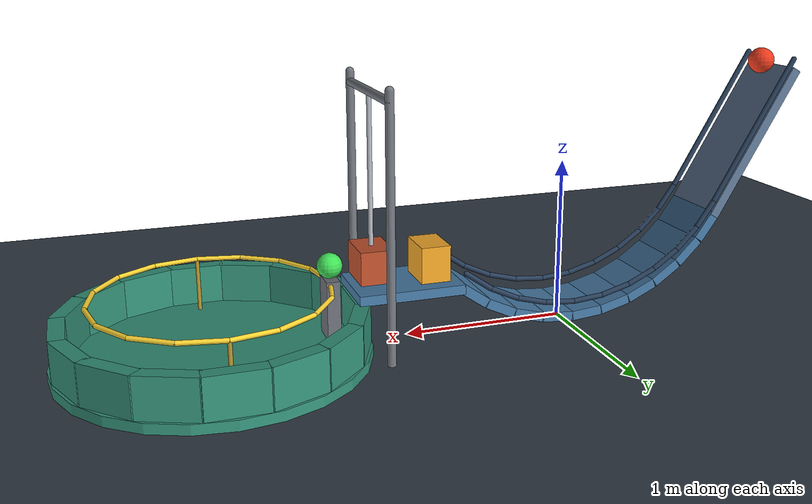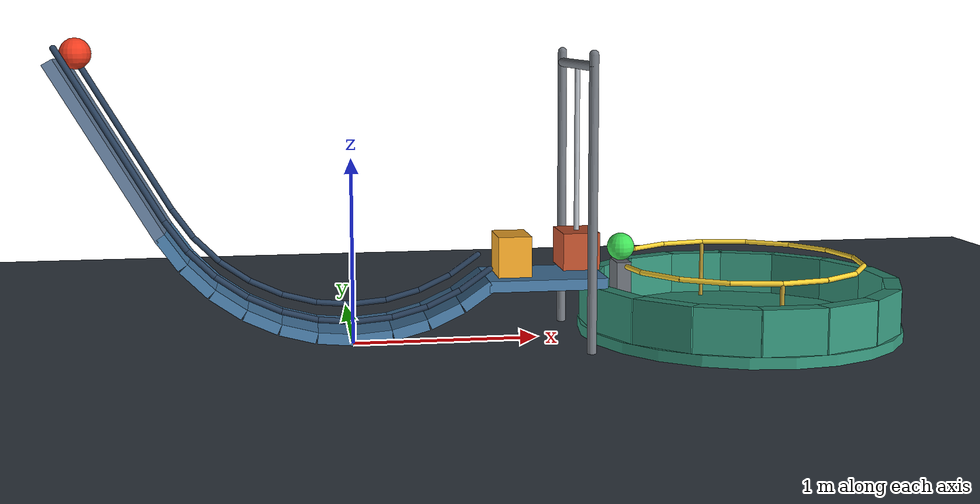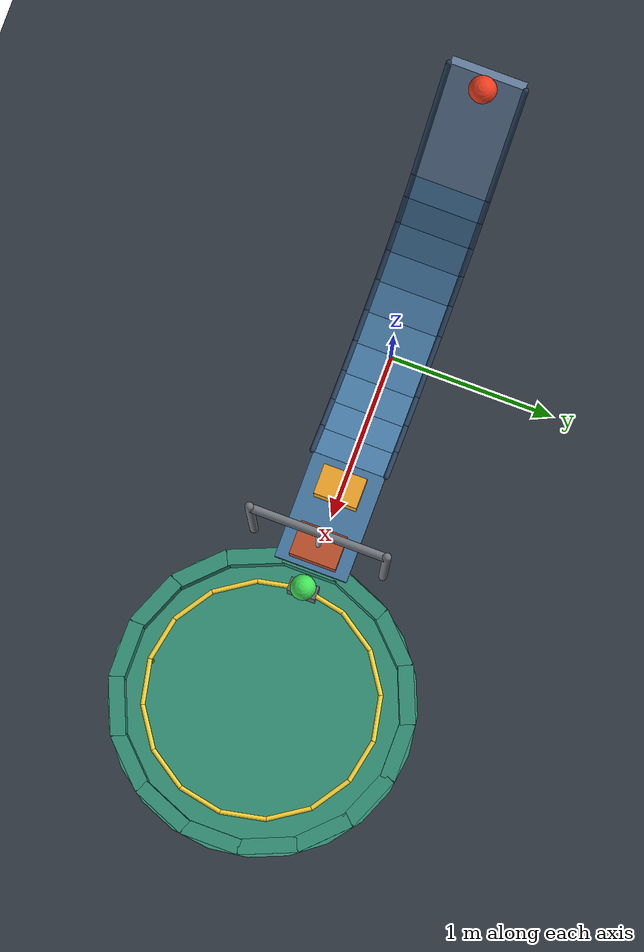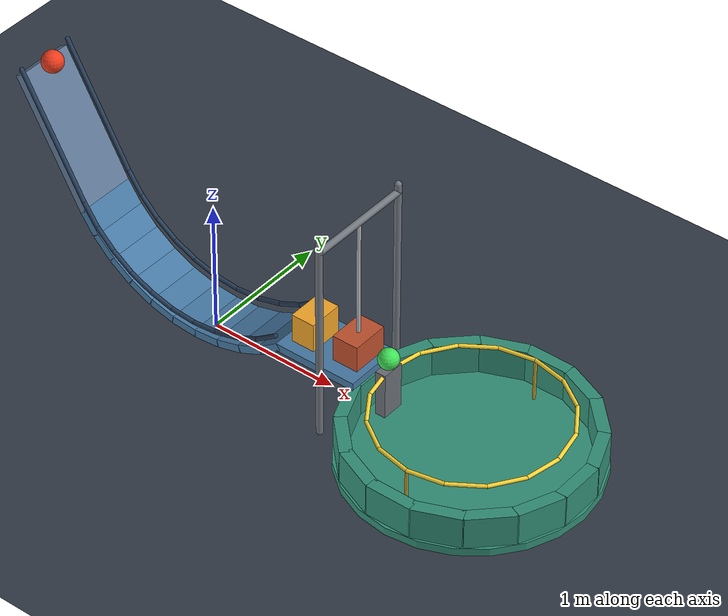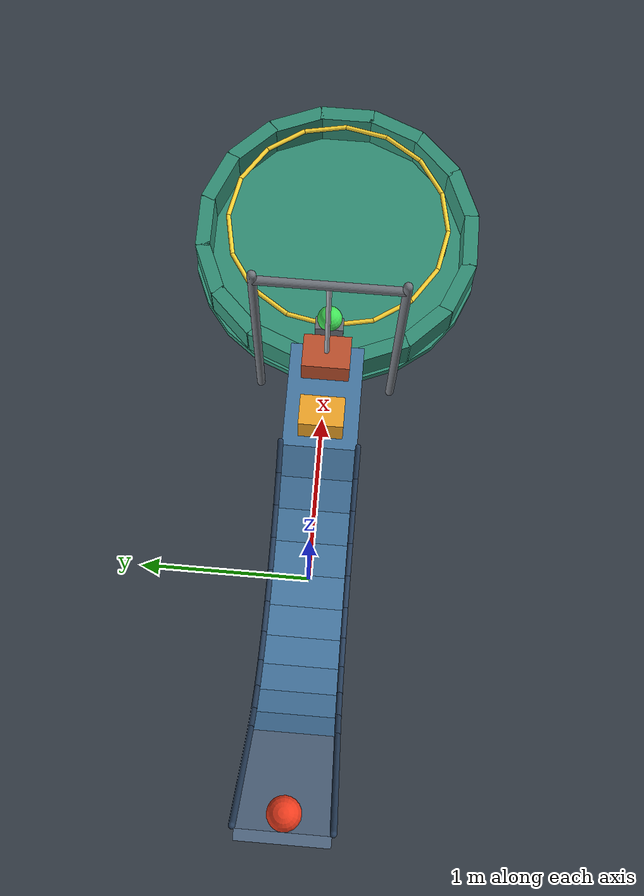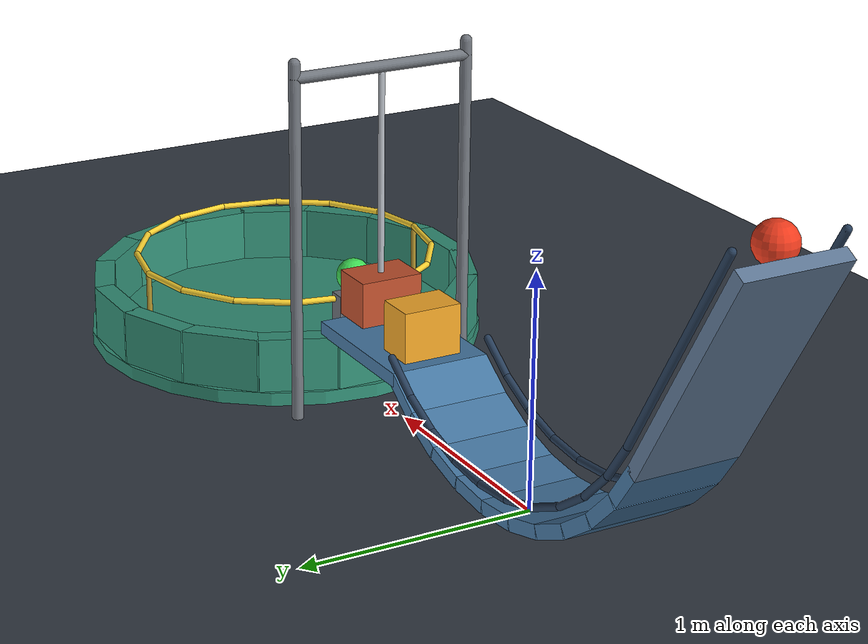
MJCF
<mujoco model="halfpipe_chain">
  <compiler angle="degree" autolimits="true"/>
  <option timestep="0.002" gravity="0 0 -9.81" integrator="implicitfast" solver="Newton" iterations="100" cone="elliptic" impratio="5"/>
  <size njmax="2000" nconmax="400"/>

  <visual>
    <headlight ambient="0.45 0.45 0.45" diffuse="0.7 0.7 0.7" specular="0.2 0.2 0.2"/>
    <map znear="0.01" zfar="30"/>
  </visual>

  <worldbody>
    <light name="main_light" pos="-1 -3 6" dir="0.2 0.3 -1" diffuse="0.8 0.8 0.8"/>
    <camera name="overview" pos="0.5 -6 3.4" xyaxes="1 0 0 0 0.4 0.916515"/>
    <geom name="floor" type="plane" pos="0 0 0" size="6 4 0.1" rgba="0.20 0.23 0.27 1" friction="0.8 0.02 0.01" condim="6" solref="0.01 1"/>

    <!-- The contact point beneath ball1 is one metre uphill from the ramp exit. -->
    <body name="ramp">
      <geom name="ramp_surface" type="box" pos="-1.228609 0 1.068013" quat="0.866025 0 0.5 0" size="0.52 0.22 0.03" rgba="0.38 0.48 0.60 1" friction="0.45 0.005 0.0002" condim="6" solref="0.008 0.8"/>
      <geom name="ramp_rail_left" type="capsule" fromto="-1.452628 -0.225 1.586025 -0.952628 -0.225 0.72" size="0.016" rgba="0.16 0.25 0.36 1" friction="0.3 0.005 0.0002" condim="6"/>
      <geom name="ramp_rail_right" type="capsule" fromto="-1.452628 0.225 1.586025 -0.952628 0.225 0.72" size="0.016" rgba="0.16 0.25 0.36 1" friction="0.3 0.005 0.0002" condim="6"/>
    </body>

    <!-- Primitive box facets approximate a circular halfpipe of radius 1.1 m. -->
    <body name="halfpipe">
      <geom name="halfpipe_surface_01" type="box" pos="-0.922213 0 0.554253" quat="0.887011 0 0.461749 0" size="0.0962 0.22 0.03" rgba="0.28 0.48 0.65 1" friction="0.45 0.005 0.0002" condim="6" solref="0.008 0.8"/>
      <geom name="halfpipe_surface_02" type="box" pos="-0.796071 0 0.403929" quat="0.923880 0 0.382683 0" size="0.0962 0.22 0.03" rgba="0.28 0.48 0.65 1" friction="0.45 0.005 0.0002" condim="6" solref="0.008 0.8"/>
      <geom name="halfpipe_surface_03" type="box" pos="-0.645747 0 0.277787" quat="0.953717 0 0.300706 0" size="0.0962 0.22 0.03" rgba="0.28 0.48 0.65 1" friction="0.45 0.005 0.0002" condim="6" solref="0.008 0.8"/>
      <geom name="halfpipe_surface_04" type="box" pos="-0.475786 0 0.179661" quat="0.976296 0 0.216440 0" size="0.0962 0.22 0.03" rgba="0.28 0.48 0.65 1" friction="0.45 0.005 0.0002" condim="6" solref="0.008 0.8"/>
      <geom name="halfpipe_surface_05" type="box" pos="-0.291384 0 0.112539" quat="0.991445 0 0.130526 0" size="0.0962 0.22 0.03" rgba="0.28 0.48 0.65 1" friction="0.45 0.005 0.0002" condim="6" solref="0.008 0.8"/>
      <geom name="halfpipe_surface_06" type="box" pos="-0.098123 0 0.078470" quat="0.999048 0 0.043619 0" size="0.0962 0.22 0.03" rgba="0.28 0.48 0.65 1" friction="0.45 0.005 0.0002" condim="6" solref="0.008 0.8"/>
      <geom name="halfpipe_surface_07" type="box" pos="0.098123 0 0.078470" quat="0.999048 0 -0.043619 0" size="0.0962 0.22 0.03" rgba="0.28 0.48 0.65 1" friction="0.45 0.005 0.0002" condim="6" solref="0.008 0.8"/>
      <geom name="halfpipe_surface_08" type="box" pos="0.291384 0 0.112539" quat="0.991445 0 -0.130526 0" size="0.0962 0.22 0.03" rgba="0.28 0.48 0.65 1" friction="0.45 0.005 0.0002" condim="6" solref="0.008 0.8"/>
      <geom name="halfpipe_surface_09" type="box" pos="0.475786 0 0.179661" quat="0.976296 0 -0.216440 0" size="0.0962 0.22 0.03" rgba="0.28 0.48 0.65 1" friction="0.45 0.005 0.0002" condim="6" solref="0.008 0.8"/>
      <geom name="halfpipe_surface_10" type="box" pos="0.645747 0 0.277787" quat="0.953717 0 -0.300706 0" size="0.0962 0.22 0.03" rgba="0.28 0.48 0.65 1" friction="0.45 0.005 0.0002" condim="6" solref="0.008 0.8"/>
      <geom name="halfpipe_exit_shelf" type="box" pos="1.028533 0 0.327351" size="0.321467 0.22 0.03" rgba="0.28 0.48 0.65 1" friction="0.08 0.003 0.0001" condim="6" solref="0.008 1"/>

      <geom name="halfpipe_left_01" type="capsule" fromto="-0.952628 -0.225 0.72 -0.842649 -0.225 0.562933" size="0.016" rgba="0.16 0.25 0.36 1"/>
      <geom name="halfpipe_left_02" type="capsule" fromto="-0.842649 -0.225 0.562933 -0.707066 -0.225 0.427351" size="0.016" rgba="0.16 0.25 0.36 1"/>
      <geom name="halfpipe_left_03" type="capsule" fromto="-0.707066 -0.225 0.427351 -0.55 -0.225 0.317372" size="0.016" rgba="0.16 0.25 0.36 1"/>
      <geom name="halfpipe_left_04" type="capsule" fromto="-0.55 -0.225 0.317372 -0.376222 -0.225 0.236338" size="0.016" rgba="0.16 0.25 0.36 1"/>
      <geom name="halfpipe_left_05" type="capsule" fromto="-0.376222 -0.225 0.236338 -0.191013 -0.225 0.186711" size="0.016" rgba="0.16 0.25 0.36 1"/>
      <geom name="halfpipe_left_06" type="capsule" fromto="-0.191013 -0.225 0.186711 0 -0.225 0.17" size="0.016" rgba="0.16 0.25 0.36 1"/>
      <geom name="halfpipe_left_07" type="capsule" fromto="0 -0.225 0.17 0.191013 -0.225 0.186711" size="0.016" rgba="0.16 0.25 0.36 1"/>
      <geom name="halfpipe_left_08" type="capsule" fromto="0.191013 -0.225 0.186711 0.376222 -0.225 0.236338" size="0.016" rgba="0.16 0.25 0.36 1"/>
      <geom name="halfpipe_left_09" type="capsule" fromto="0.376222 -0.225 0.236338 0.55 -0.225 0.317372" size="0.016" rgba="0.16 0.25 0.36 1"/>
      <geom name="halfpipe_left_10" type="capsule" fromto="0.55 -0.225 0.317372 0.707066 -0.225 0.427351" size="0.016" rgba="0.16 0.25 0.36 1"/>
      <geom name="halfpipe_right_01" type="capsule" fromto="-0.952628 0.225 0.72 -0.842649 0.225 0.562933" size="0.016" rgba="0.16 0.25 0.36 1"/>
      <geom name="halfpipe_right_02" type="capsule" fromto="-0.842649 0.225 0.562933 -0.707066 0.225 0.427351" size="0.016" rgba="0.16 0.25 0.36 1"/>
      <geom name="halfpipe_right_03" type="capsule" fromto="-0.707066 0.225 0.427351 -0.55 0.225 0.317372" size="0.016" rgba="0.16 0.25 0.36 1"/>
      <geom name="halfpipe_right_04" type="capsule" fromto="-0.55 0.225 0.317372 -0.376222 0.225 0.236338" size="0.016" rgba="0.16 0.25 0.36 1"/>
      <geom name="halfpipe_right_05" type="capsule" fromto="-0.376222 0.225 0.236338 -0.191013 0.225 0.186711" size="0.016" rgba="0.16 0.25 0.36 1"/>
      <geom name="halfpipe_right_06" type="capsule" fromto="-0.191013 0.225 0.186711 0 0.225 0.17" size="0.016" rgba="0.16 0.25 0.36 1"/>
      <geom name="halfpipe_right_07" type="capsule" fromto="0 0.225 0.17 0.191013 0.225 0.186711" size="0.016" rgba="0.16 0.25 0.36 1"/>
      <geom name="halfpipe_right_08" type="capsule" fromto="0.191013 0.225 0.186711 0.376222 0.225 0.236338" size="0.016" rgba="0.16 0.25 0.36 1"/>
      <geom name="halfpipe_right_09" type="capsule" fromto="0.376222 0.225 0.236338 0.55 0.225 0.317372" size="0.016" rgba="0.16 0.25 0.36 1"/>
      <geom name="halfpipe_right_10" type="capsule" fromto="0.55 0.225 0.317372 0.707066 0.225 0.427351" size="0.016" rgba="0.16 0.25 0.36 1"/>
    </body>

    <body name="ball1" pos="-1.383346 0 1.556025">
      <freejoint name="ball1_free"/>
      <geom name="ball1_sphere" type="sphere" size="0.08" mass="3" rgba="0.95 0.24 0.12 1" friction="0.45 0.005 0.0002" condim="6" solref="0.008 0.5"/>
    </body>

    <body name="block" pos="0.86 0 0.467351">
      <freejoint name="block_free"/>
      <geom name="block_box" type="box" size="0.09 0.13 0.11" mass="0.65" rgba="0.96 0.66 0.16 1" friction="0.16 0.005 0.0001" condim="6" solref="0.008 0.5"/>
    </body>

    <body name="pendulum_frame">
      <geom name="pendulum_frame_left" type="capsule" fromto="1.22 -0.40 0 1.22 -0.40 1.55" size="0.025" rgba="0.45 0.47 0.50 1"/>
      <geom name="pendulum_frame_right" type="capsule" fromto="1.22 0.40 0 1.22 0.40 1.55" size="0.025" rgba="0.45 0.47 0.50 1"/>
      <geom name="pendulum_frame_crossbar" type="capsule" fromto="1.22 -0.40 1.49 1.22 0.40 1.49" size="0.025" rgba="0.45 0.47 0.50 1"/>
    </body>

    <body name="pendulum" pos="1.22 0 1.49">
      <joint name="pendulum_hinge" type="hinge" axis="0 1 0" damping="0.015" armature="0.001"/>
      <geom name="pendulum_rod" type="capsule" fromto="0 0 -0.03 0 0 -0.90" size="0.014" mass="0.05" rgba="0.70 0.72 0.75 1" friction="0.2 0.005 0.0001" solref="0.008 0.5"/>
      <geom name="pendulum_striker" type="box" pos="0 0 -1" size="0.10 0.14 0.10" mass="0.45" rgba="0.76 0.32 0.18 1" friction="0.2 0.005 0.0001" condim="6" solref="0.008 0.5"/>
    </body>

    <body name="ball2_pedestal" pos="1.47 0 0.2075">
      <geom name="ball2_pedestal_box" type="box" size="0.04 0.085 0.2075" rgba="0.42 0.44 0.47 1" friction="0.15 0.003 0.0001" condim="6" solref="0.008 1"/>
    </body>

    <body name="ball2" pos="1.47 0 0.49">
      <freejoint name="ball2_free"/>
      <geom name="ball2_sphere" type="sphere" size="0.075" mass="0.15" rgba="0.26 0.90 0.35 1" friction="0.65 0.01 0.01" condim="6" solref="0.008 0.6"/>
    </body>

    <!-- Horizontal drop hoop, assembled entirely from capsules. -->
    <body name="hoop" pos="2.15 0 0.39">
      <geom name="hoop_ring_01" type="capsule" fromto="0.68 0 0 0.628238 0.260225 0" size="0.014" rgba="1 0.84 0.20 1"/>
      <geom name="hoop_ring_02" type="capsule" fromto="0.628238 0.260225 0 0.480833 0.480833 0" size="0.014" rgba="1 0.84 0.20 1"/>
      <geom name="hoop_ring_03" type="capsule" fromto="0.480833 0.480833 0 0.260225 0.628238 0" size="0.014" rgba="1 0.84 0.20 1"/>
      <geom name="hoop_ring_04" type="capsule" fromto="0.260225 0.628238 0 0 0.68 0" size="0.014" rgba="1 0.84 0.20 1"/>
      <geom name="hoop_ring_05" type="capsule" fromto="0 0.68 0 -0.260225 0.628238 0" size="0.014" rgba="1 0.84 0.20 1"/>
      <geom name="hoop_ring_06" type="capsule" fromto="-0.260225 0.628238 0 -0.480833 0.480833 0" size="0.014" rgba="1 0.84 0.20 1"/>
      <geom name="hoop_ring_07" type="capsule" fromto="-0.480833 0.480833 0 -0.628238 0.260225 0" size="0.014" rgba="1 0.84 0.20 1"/>
      <geom name="hoop_ring_08" type="capsule" fromto="-0.628238 0.260225 0 -0.68 0 0" size="0.014" rgba="1 0.84 0.20 1"/>
      <geom name="hoop_ring_09" type="capsule" fromto="-0.68 0 0 -0.628238 -0.260225 0" size="0.014" rgba="1 0.84 0.20 1"/>
      <geom name="hoop_ring_10" type="capsule" fromto="-0.628238 -0.260225 0 -0.480833 -0.480833 0" size="0.014" rgba="1 0.84 0.20 1"/>
      <geom name="hoop_ring_11" type="capsule" fromto="-0.480833 -0.480833 0 -0.260225 -0.628238 0" size="0.014" rgba="1 0.84 0.20 1"/>
      <geom name="hoop_ring_12" type="capsule" fromto="-0.260225 -0.628238 0 0 -0.68 0" size="0.014" rgba="1 0.84 0.20 1"/>
      <geom name="hoop_ring_13" type="capsule" fromto="0 -0.68 0 0.260225 -0.628238 0" size="0.014" rgba="1 0.84 0.20 1"/>
      <geom name="hoop_ring_14" type="capsule" fromto="0.260225 -0.628238 0 0.480833 -0.480833 0" size="0.014" rgba="1 0.84 0.20 1"/>
      <geom name="hoop_ring_15" type="capsule" fromto="0.480833 -0.480833 0 0.628238 -0.260225 0" size="0.014" rgba="1 0.84 0.20 1"/>
      <geom name="hoop_ring_16" type="capsule" fromto="0.628238 -0.260225 0 0.68 0 0" size="0.014" rgba="1 0.84 0.20 1"/>
      <geom name="hoop_support_left" type="capsule" fromto="0 -0.68 -0.39 0 -0.68 0" size="0.012" rgba="0.70 0.58 0.18 1"/>
      <geom name="hoop_support_right" type="capsule" fromto="0 0.68 -0.39 0 0.68 0" size="0.012" rgba="0.70 0.58 0.18 1"/>
    </body>

    <!-- Open catching cup with overlapping wall facets and dissipative contacts. -->
    <body name="cup" pos="2.15 0 0">
      <geom name="cup_bottom" type="cylinder" pos="0 0 0.03" size="0.90 0.03" rgba="0.20 0.57 0.47 1" friction="0.9 0.02 0.02" condim="6" solref="0.01 1"/>
      <geom name="cup_wall_01" type="box" pos="0.83 0 0.18" size="0.045 0.17 0.12" rgba="0.20 0.57 0.47 1" friction="0.9 0.02 0.02" condim="6" solref="0.01 1"/>
      <geom name="cup_wall_02" type="box" pos="0.766820 0.317625 0.18" quat="0.980785 0 0 0.195090" size="0.045 0.17 0.12" rgba="0.20 0.57 0.47 1" friction="0.9 0.02 0.02" condim="6" solref="0.01 1"/>
      <geom name="cup_wall_03" type="box" pos="0.586899 0.586899 0.18" quat="0.923880 0 0 0.382683" size="0.045 0.17 0.12" rgba="0.20 0.57 0.47 1" friction="0.9 0.02 0.02" condim="6" solref="0.01 1"/>
      <geom name="cup_wall_04" type="box" pos="0.317625 0.766820 0.18" quat="0.831470 0 0 0.555570" size="0.045 0.17 0.12" rgba="0.20 0.57 0.47 1" friction="0.9 0.02 0.02" condim="6" solref="0.01 1"/>
      <geom name="cup_wall_05" type="box" pos="0 0.83 0.18" quat="0.707107 0 0 0.707107" size="0.045 0.17 0.12" rgba="0.20 0.57 0.47 1" friction="0.9 0.02 0.02" condim="6" solref="0.01 1"/>
      <geom name="cup_wall_06" type="box" pos="-0.317625 0.766820 0.18" quat="0.555570 0 0 0.831470" size="0.045 0.17 0.12" rgba="0.20 0.57 0.47 1" friction="0.9 0.02 0.02" condim="6" solref="0.01 1"/>
      <geom name="cup_wall_07" type="box" pos="-0.586899 0.586899 0.18" quat="0.382683 0 0 0.923880" size="0.045 0.17 0.12" rgba="0.20 0.57 0.47 1" friction="0.9 0.02 0.02" condim="6" solref="0.01 1"/>
      <geom name="cup_wall_08" type="box" pos="-0.766820 0.317625 0.18" quat="0.195090 0 0 0.980785" size="0.045 0.17 0.12" rgba="0.20 0.57 0.47 1" friction="0.9 0.02 0.02" condim="6" solref="0.01 1"/>
      <geom name="cup_wall_09" type="box" pos="-0.83 0 0.18" quat="0 0 0 1" size="0.045 0.17 0.12" rgba="0.20 0.57 0.47 1" friction="0.9 0.02 0.02" condim="6" solref="0.01 1"/>
      <geom name="cup_wall_10" type="box" pos="-0.766820 -0.317625 0.18" quat="-0.195090 0 0 0.980785" size="0.045 0.17 0.12" rgba="0.20 0.57 0.47 1" friction="0.9 0.02 0.02" condim="6" solref="0.01 1"/>
      <geom name="cup_wall_11" type="box" pos="-0.586899 -0.586899 0.18" quat="-0.382683 0 0 0.923880" size="0.045 0.17 0.12" rgba="0.20 0.57 0.47 1" friction="0.9 0.02 0.02" condim="6" solref="0.01 1"/>
      <geom name="cup_wall_12" type="box" pos="-0.317625 -0.766820 0.18" quat="-0.555570 0 0 0.831470" size="0.045 0.17 0.12" rgba="0.20 0.57 0.47 1" friction="0.9 0.02 0.02" condim="6" solref="0.01 1"/>
      <geom name="cup_wall_13" type="box" pos="0 -0.83 0.18" quat="-0.707107 0 0 0.707107" size="0.045 0.17 0.12" rgba="0.20 0.57 0.47 1" friction="0.9 0.02 0.02" condim="6" solref="0.01 1"/>
      <geom name="cup_wall_14" type="box" pos="0.317625 -0.766820 0.18" quat="-0.831470 0 0 0.555570" size="0.045 0.17 0.12" rgba="0.20 0.57 0.47 1" friction="0.9 0.02 0.02" condim="6" solref="0.01 1"/>
      <geom name="cup_wall_15" type="box" pos="0.586899 -0.586899 0.18" quat="-0.923880 0 0 0.382683" size="0.045 0.17 0.12" rgba="0.20 0.57 0.47 1" friction="0.9 0.02 0.02" condim="6" solref="0.01 1"/>
      <geom name="cup_wall_16" type="box" pos="0.766820 -0.317625 0.18" quat="-0.980785 0 0 0.195090" size="0.045 0.17 0.12" rgba="0.20 0.57 0.47 1" friction="0.9 0.02 0.02" condim="6" solref="0.01 1"/>
    </body>
  </worldbody>

  <keyframe>
    <key name="start"/>
  </keyframe>
</mujoco>
